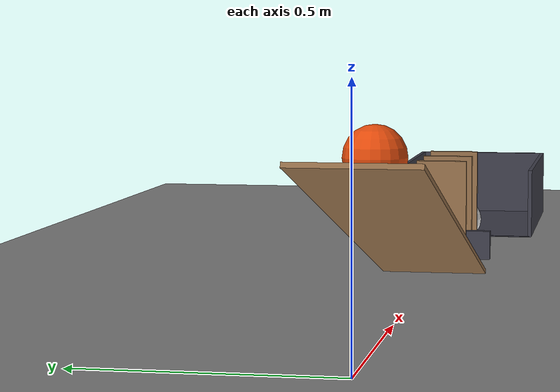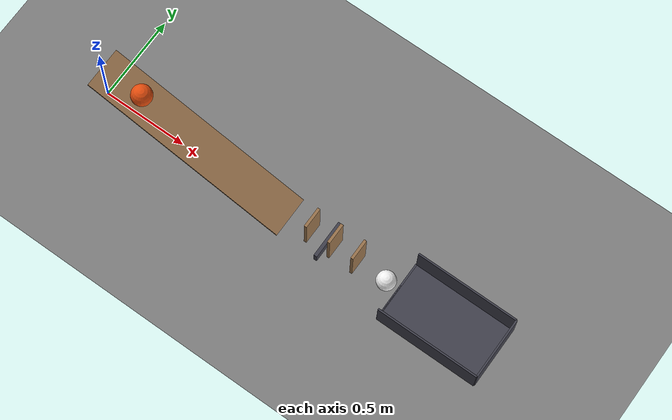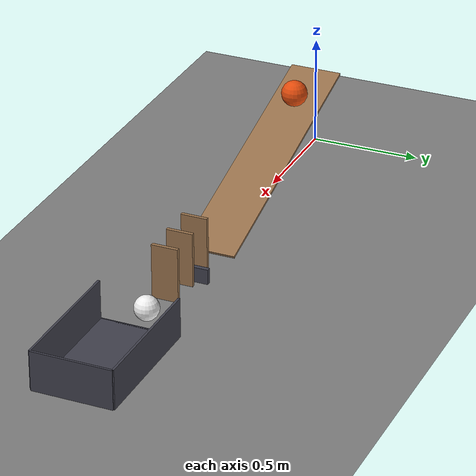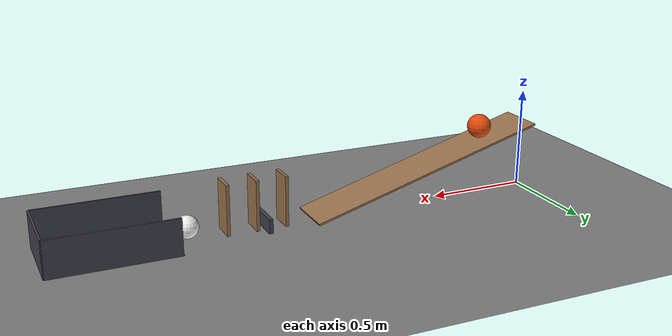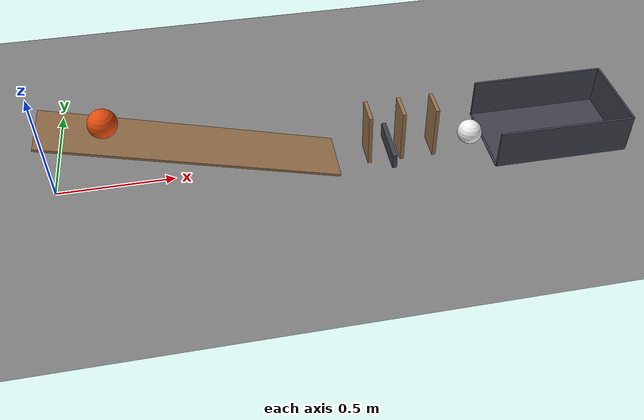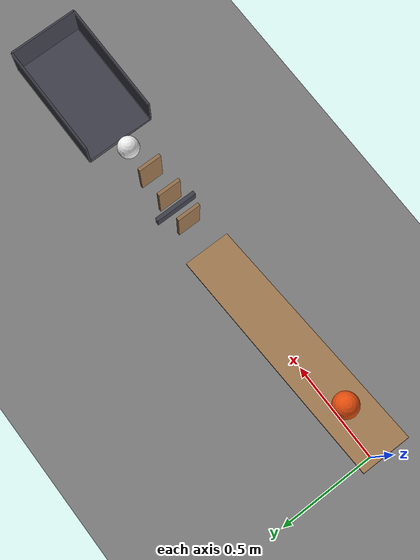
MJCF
<mujoco model="ramp_and_three_dominoes_revised">
  <compiler angle="radian"/>
  <option timestep="0.002"/>
  <worldbody>
    <geom name="floor" type="plane" size="6 6 0.1" friction="0.08 0.0001 2e-05"/>
    <body name="ramp">
      <geom name="ramp" type="box" pos="0.6 0 0.18" size="0.625 0.12 0.005" euler="0 0.283794 0" friction="0.8 0.005 0.001" rgba="0.6 0.45 0.3 1"/>
    </body>
    <body name="ball1" pos="0.2582 0 0.3474">
      <freejoint/>
      <geom name="ball1" type="sphere" pos="0 0 0" size="0.06" mass="0.25" condim="6" friction="0.8 0.005 0.001" solref="0.01 1" rgba="0.9 0.3 0.05 1"/>
    </body>
    <body name="d1" pos="1.34 0 0.125">
      <freejoint/>
      <geom name="d1" type="box" pos="0 0 0" size="0.008 0.06 0.125" mass="0.08" friction="1.1 0.005 0.001" solref="0.01 1" rgba="0.6 0.45 0.3 1"/>
    </body>
    <body name="d2" pos="1.485 0 0.125">
      <freejoint/>
      <geom name="d2" type="box" pos="0 0 0" size="0.008 0.06 0.125" mass="0.08" friction="1.1 0.005 0.001" solref="0.01 1" rgba="0.6 0.45 0.3 1"/>
    </body>
    <body name="d3" pos="1.63 0 0.125">
      <freejoint/>
      <geom name="d3" type="box" pos="0 0 0" size="0.008 0.06 0.125" mass="0.1" friction="0.08 0.0001 2e-05" solref="0.01 1" rgba="0.6 0.45 0.3 1"/>
    </body>
    <body name="trigger stop">
      <geom name="trigger stop" type="box" pos="1.44 0 0.035" size="0.01 0.11 0.035" friction="0.9 0.005 0.0001" solref="0.01 1" rgba="0.25 0.25 0.3 1"/>
    </body>
    <body name="ball2" pos="1.81 0 0.055">
      <freejoint/>
      <geom name="ball2" type="sphere" pos="0 0 0" size="0.055" mass="0.055" condim="6" friction="0.04 0.0001 2e-05" solref="0.01 1" rgba="0.95 0.95 0.95 1"/>
    </body>
    <body name="cup">
      <geom name="cup_base" type="box" pos="2.18 0 0.001" size="0.3 0.18 0.001" friction="0.15 0.01 0.003" solref="0.01 1" rgba="0.25 0.25 0.3 1"/>
      <geom name="cup_near_wall" type="box" pos="1.88 0 0.001" size="0.005 0.18 0.001" friction="0.15 0.01 0.003" solref="0.01 1" rgba="0.25 0.25 0.3 1"/>
      <geom name="cup_far_wall" type="box" pos="2.48 0 0.09" size="0.005 0.18 0.09" friction="0.15 0.01 0.003" solref="0.01 1" rgba="0.25 0.25 0.3 1"/>
      <geom name="cup_left_wall" type="box" pos="2.18 0.18 0.09" size="0.3 0.005 0.09" friction="0.15 0.01 0.003" solref="0.01 1" rgba="0.25 0.25 0.3 1"/>
      <geom name="cup_right_wall" type="box" pos="2.18 -0.18 0.09" size="0.3 0.005 0.09" friction="0.15 0.01 0.003" solref="0.01 1" rgba="0.25 0.25 0.3 1"/>
    </body>
  </worldbody>
  <keyframe>
    <key name="start" qpos="0.2582 0 0.3474 1 0 0 0 1.34 0 0.125 1 0 0 0 1.485 0 0.125 1 0 0 0 1.63 0 0.125 1 0 0 0 1.81 0 0.055 1 0 0 0" qvel="0 0 0 0 0 0 0 0 0 0 0 0 0 0 0 0 0 0 0 0 0 0 0 0 0 0 0 0 0 0"/>
  </keyframe>
</mujoco>
